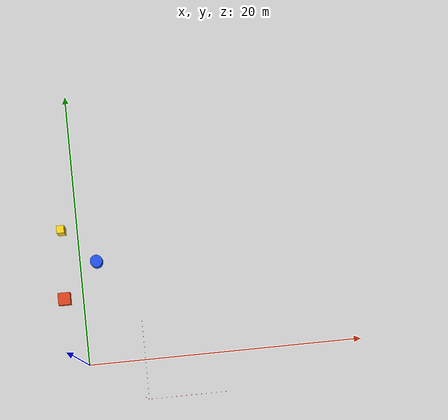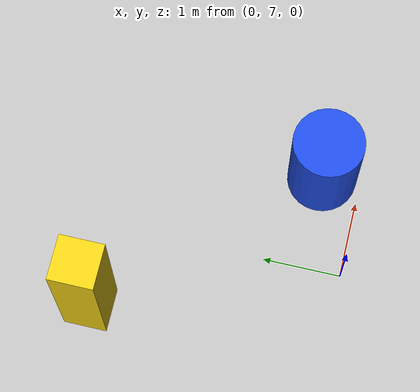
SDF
<sdf version="1.9">
 <world name="iris_runway">
  <physics name="1ms" type="ignore">
   <max_step_size>0.001</max_step_size>
   <real_time_factor>1.0</real_time_factor>
  </physics>
  <plugin filename="gz-sim-physics-system" name="gz::sim::systems::Physics"/>
  <plugin filename="gz-sim-sensors-system" name="gz::sim::systems::Sensors">
   <render_engine>ogre2</render_engine>
  </plugin>
  <plugin filename="gz-sim-user-commands-system" name="gz::sim::systems::UserCommands"/>
  <plugin filename="gz-sim-scene-broadcaster-system" name="gz::sim::systems::SceneBroadcaster"/>
  <plugin filename="gz-sim-imu-system" name="gz::sim::systems::Imu"/>
  <plugin filename="gz-sim-navsat-system" name="gz::sim::systems::NavSat"/>
  <scene><ambient>1.0 1.0 1.0</ambient><background>0.8 0.8 0.8</background></scene>
  <spherical_coordinates>
   <latitude_deg>-35.363262</latitude_deg>
   <longitude_deg>149.165237</longitude_deg>
   <elevation>584</elevation>
   <heading_deg>0</heading_deg>
   <surface_model>EARTH_WGS84</surface_model>
  </spherical_coordinates>
  <light type="directional" name="sun">
   <pose>0 0 10 0 0 0</pose>
   <diffuse>0.8 0.8 0.8 1</diffuse>
   <specular>0.8 0.8 0.8 1</specular>
   <attenuation>
    <range>1000</range>
    <constant>0.9</constant>
    <linear>0.01</linear>
    <quadratic>0.001</quadratic>
   </attenuation>
   <direction>-0.5 0.1 -0.9</direction>
  </light>
  <model name="axes">
   <static>1</static>
   <pose>0 0 -100 0 0 0</pose>
   <link name="link">
    <visual name="r">
     <cast_shadows>0</cast_shadows>
     <pose>5 0 0.1 0 0 0</pose>
     <geometry><box><size>10 0.01 0.01</size></box></geometry>
     <material>
      <ambient>1 0 0 0.8</ambient>
      <diffuse>1 0 0 0.8</diffuse>
      <emissive>1 0 0 0.8</emissive>
      <specular>0.5 0.5 0.5 0.8</specular>
     </material>
    </visual>
    <visual name="g">
     <cast_shadows>0</cast_shadows>
     <pose>0 5 0.1 0 0 0</pose>
     <geometry><box><size>0.01 10 0.01</size></box></geometry>
     <material>
      <ambient>0 1 0 0.8</ambient>
      <diffuse>0 1 0 0.8</diffuse>
      <emissive>0 1 0 0.8</emissive>
      <specular>0.5 0.5 0.5 0.8</specular>
     </material>
    </visual>
    <visual name="b">
     <cast_shadows>0</cast_shadows>
     <pose>0 0 5.1 0 0 0</pose>
     <geometry><box><size>0.01 0.01 10</size></box></geometry>
     <material>
      <ambient>0 0 1 0.8</ambient>
      <diffuse>0 0 1 0.8</diffuse>
      <emissive>0 0 1 0.8</emissive>
      <specular>0.5 0.5 0.5 0.8</specular>
     </material>
    </visual>
    <sensor name="navsat_sensor" type="navsat"><always_on>1</always_on><update_rate>1</update_rate></sensor>
   </link>
  </model>
  <model name="left_crate">
   <static>true</static>
   <pose>-1.35 5.0 0.5 0 0 0</pose>
   <link name="link">
    <collision name="collision"><geometry><box><size>0.9 0.9 1.0</size></box></geometry></collision>
    <visual name="visual">
     <geometry><box><size>0.9 0.9 1.0</size></box></geometry>
     <material><ambient>0.75 0.20 0.08 1</ambient><diffuse>0.85 0.25 0.10 1</diffuse></material>
    </visual>
   </link>
  </model>
  <model name="right_barrel">
   <static>true</static>
   <pose>1.25 7.5 0.65 0 0 0</pose>
   <link name="link">
    <collision name="collision">
     <geometry><cylinder><radius>0.45</radius><length>1.3</length></cylinder></geometry>
    </collision>
    <visual name="visual">
     <geometry><cylinder><radius>0.45</radius><length>1.3</length></cylinder></geometry>
     <material><ambient>0.10 0.25 0.75 1</ambient><diffuse>0.12 0.30 0.90 1</diffuse></material>
    </visual>
   </link>
  </model>
  <model name="left_tall_post">
   <static>true</static>
   <pose>-1.1 10.0 1.0 0 0 0</pose>
   <link name="link">
    <collision name="collision"><geometry><box><size>0.55 0.55 2.0</size></box></geometry></collision>
    <visual name="visual">
     <geometry><box><size>0.55 0.55 2.0</size></box></geometry>
     <material><ambient>0.85 0.70 0.05 1</ambient><diffuse>0.95 0.82 0.08 1</diffuse></material>
    </visual>
   </link>
  </model>
 </world>
</sdf>
